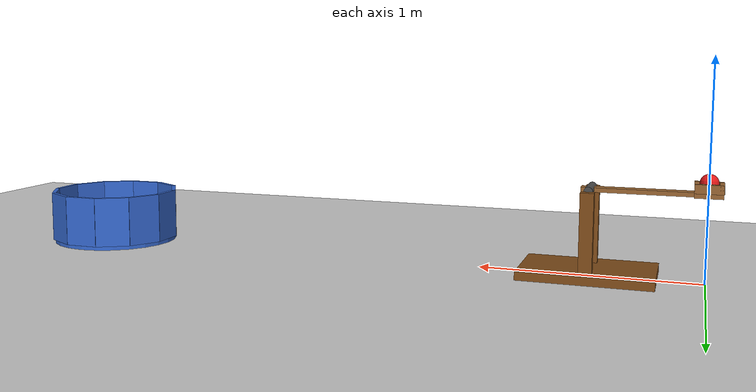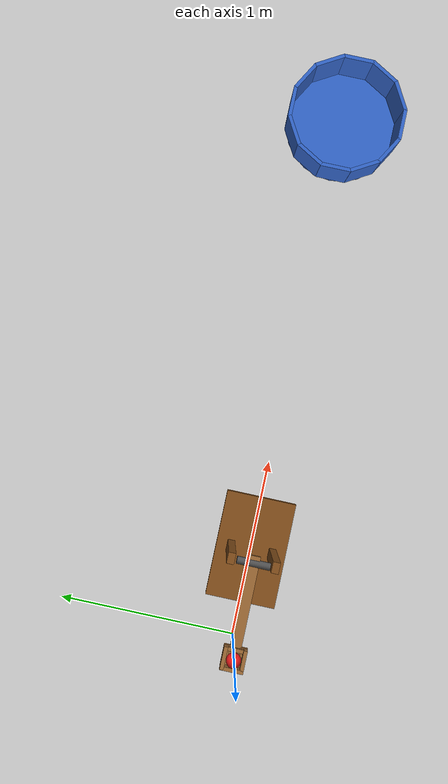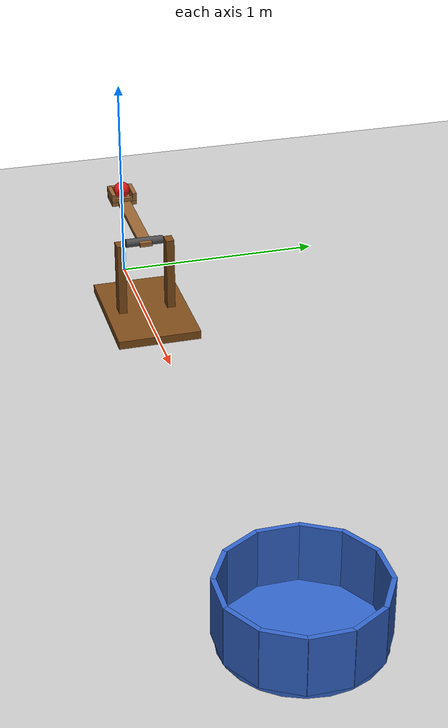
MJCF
<mujoco model="catapult_into_bucket">
  <option timestep="0.002" gravity="0 0 -9.81"/>

  <worldbody>
    <light name="sun" pos="1.5 -2 4" dir="0 0.4 -1" directional="true"/>
    <geom name="floor" type="plane" size="10 10 0.1" rgba="0.8 0.8 0.8 1"/>

    <!-- static catapult frame -->
    <geom name="catapult_base" type="box" pos="0.5 0 0.02" size="0.3 0.2 0.02" rgba="0.5 0.3 0.1 1"/>
    <geom name="catapult_post_l" type="box" pos="0.5 0.12 0.21" size="0.03 0.02 0.19" rgba="0.5 0.3 0.1 1"/>
    <geom name="catapult_post_r" type="box" pos="0.5 -0.12 0.21" size="0.03 0.02 0.19" rgba="0.5 0.3 0.1 1"/>

    <!-- throwing arm, pivot at (0.5, 0, 0.4); positive rotation about +y lifts the cup end -->
    <body name="catapult_arm" pos="0.5 0 0.4">
      <inertial pos="-0.26 0 0" mass="0.5" diaginertia="0.0003 0.015 0.015"/>
      <joint name="catapult_hinge" type="hinge" axis="0 1 0" pos="0 0 0" limited="true" range="-10 45" solreflimit="0.01 1" damping="0"/>
      <geom name="catapult_axle" type="cylinder" pos="0 0 0" euler="90 0 0" size="0.02 0.09" rgba="0.3 0.3 0.3 1"/>
      <geom name="catapult_beam" type="box" pos="-0.26 0 0" size="0.30 0.03 0.01" rgba="0.6 0.4 0.2 1"/>
      <geom name="catapult_cup_base" type="box" pos="-0.5 0 0" size="0.06 0.062 0.01" rgba="0.6 0.4 0.2 1"/>
      <geom name="catapult_cup_outer" type="box" pos="-0.552 0 0.03" size="0.01 0.062 0.02" rgba="0.6 0.4 0.2 1"/>
      <geom name="catapult_cup_inner" type="box" pos="-0.455 0 0.018" size="0.01 0.062 0.008" rgba="0.6 0.4 0.2 1"/>
      <geom name="catapult_cup_side_l" type="box" pos="-0.5 0.052 0.03" size="0.06 0.01 0.02" rgba="0.6 0.4 0.2 1"/>
      <geom name="catapult_cup_side_r" type="box" pos="-0.5 -0.052 0.03" size="0.06 0.01 0.02" rgba="0.6 0.4 0.2 1"/>
    </body>

    <!-- bucket, centre 3 m from the ball's start (0,0,0.45) -->
    <body name="bucket" pos="3 0 0">
      <geom name="bucket_bottom" type="cylinder" pos="0 0 0.01" size="0.32 0.01" rgba="0.2 0.4 0.8 1"/>
      <geom name="bucket_wall_00" type="box" pos="0.31 0 0.145" euler="0 0 0" size="0.01 0.085 0.125" rgba="0.2 0.4 0.8 1"/>
      <geom name="bucket_wall_01" type="box" pos="0.2685 0.155 0.145" euler="0 0 30" size="0.01 0.085 0.125" rgba="0.2 0.4 0.8 1"/>
      <geom name="bucket_wall_02" type="box" pos="0.155 0.2685 0.145" euler="0 0 60" size="0.01 0.085 0.125" rgba="0.2 0.4 0.8 1"/>
      <geom name="bucket_wall_03" type="box" pos="0 0.31 0.145" euler="0 0 90" size="0.01 0.085 0.125" rgba="0.2 0.4 0.8 1"/>
      <geom name="bucket_wall_04" type="box" pos="-0.155 0.2685 0.145" euler="0 0 120" size="0.01 0.085 0.125" rgba="0.2 0.4 0.8 1"/>
      <geom name="bucket_wall_05" type="box" pos="-0.2685 0.155 0.145" euler="0 0 150" size="0.01 0.085 0.125" rgba="0.2 0.4 0.8 1"/>
      <geom name="bucket_wall_06" type="box" pos="-0.31 0 0.145" euler="0 0 180" size="0.01 0.085 0.125" rgba="0.2 0.4 0.8 1"/>
      <geom name="bucket_wall_07" type="box" pos="-0.2685 -0.155 0.145" euler="0 0 210" size="0.01 0.085 0.125" rgba="0.2 0.4 0.8 1"/>
      <geom name="bucket_wall_08" type="box" pos="-0.155 -0.2685 0.145" euler="0 0 240" size="0.01 0.085 0.125" rgba="0.2 0.4 0.8 1"/>
      <geom name="bucket_wall_09" type="box" pos="0 -0.31 0.145" euler="0 0 270" size="0.01 0.085 0.125" rgba="0.2 0.4 0.8 1"/>
      <geom name="bucket_wall_10" type="box" pos="0.155 -0.2685 0.145" euler="0 0 300" size="0.01 0.085 0.125" rgba="0.2 0.4 0.8 1"/>
      <geom name="bucket_wall_11" type="box" pos="0.2685 -0.155 0.145" euler="0 0 330" size="0.01 0.085 0.125" rgba="0.2 0.4 0.8 1"/>
    </body>

    <!-- ball resting in the catapult cup -->
    <body name="ball" pos="0 0 0.45">
      <freejoint name="ball_free"/>
      <geom name="ball" type="sphere" size="0.04" mass="0.1" condim="6" friction="0.8 0.01 0.01" rgba="0.9 0.1 0.1 1"/>
    </body>
  </worldbody>

  <actuator>
    <motor name="catapult_motor" joint="catapult_hinge" gear="1" ctrllimited="true" ctrlrange="0 10"/>
  </actuator>

  <keyframe>
    <key name="start" qpos="0 0 0 0.45 1 0 0 0" qvel="0 0 0 0 0 0 0" ctrl="5.7"/>
  </keyframe>
</mujoco>
